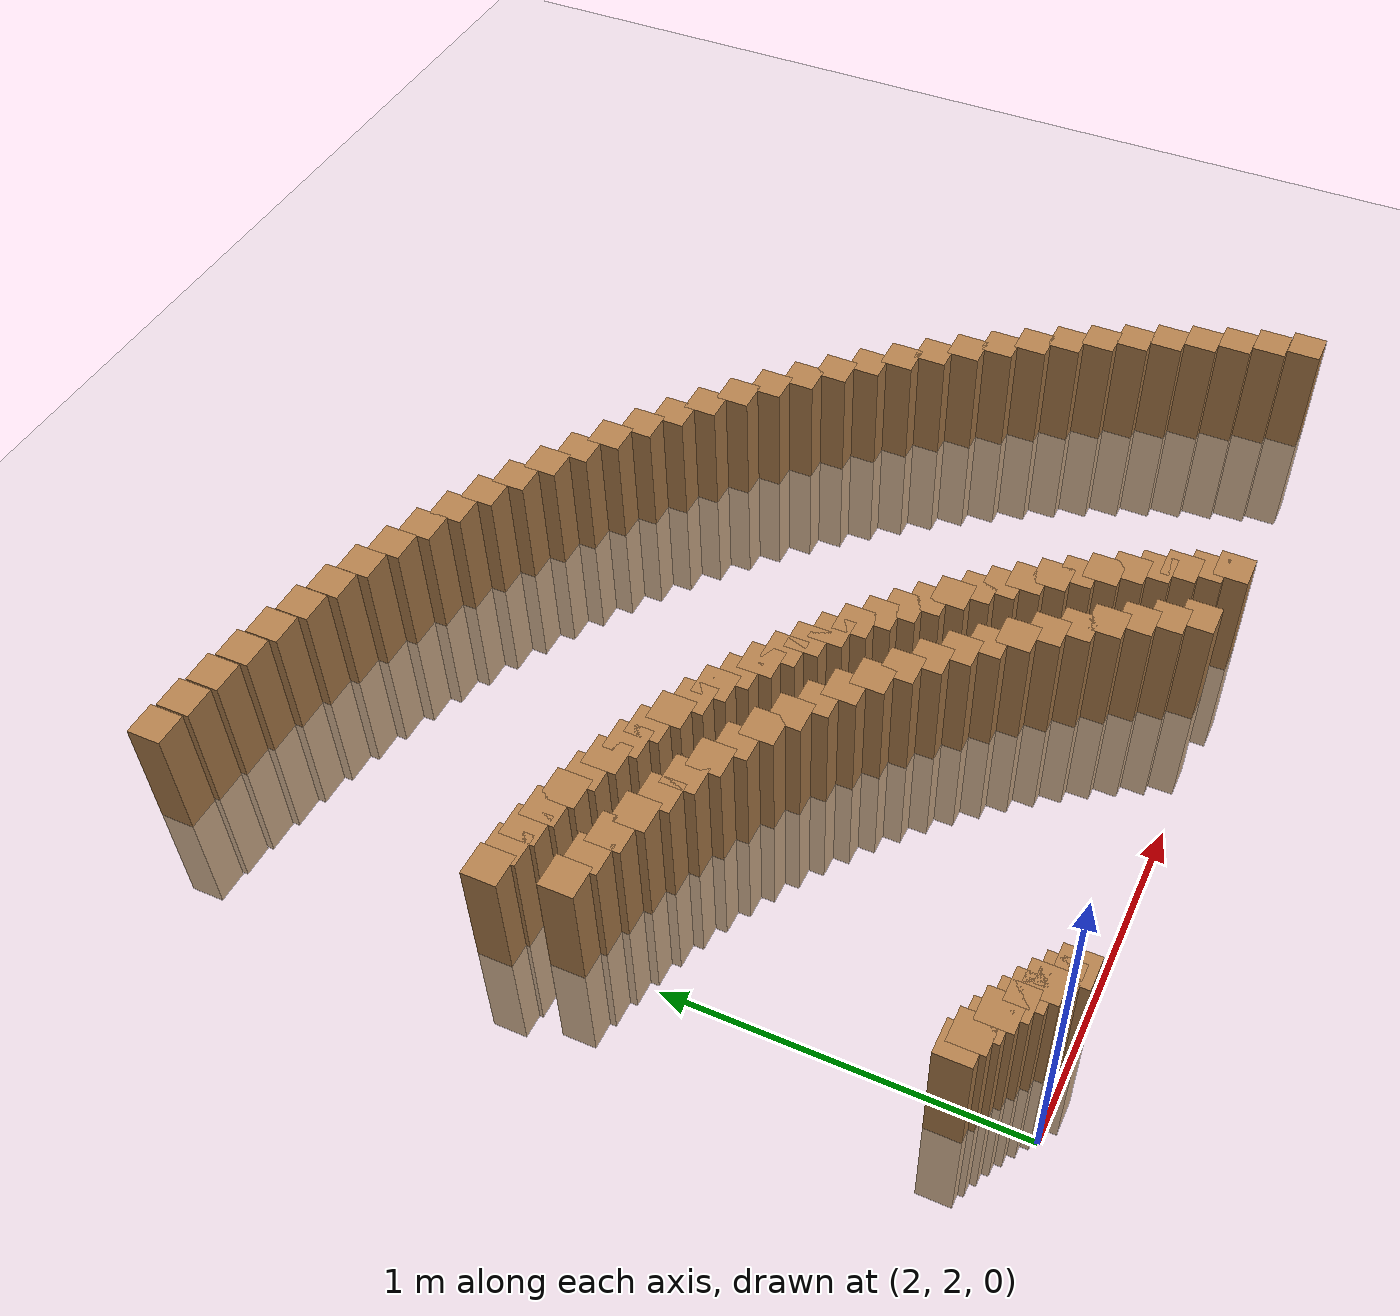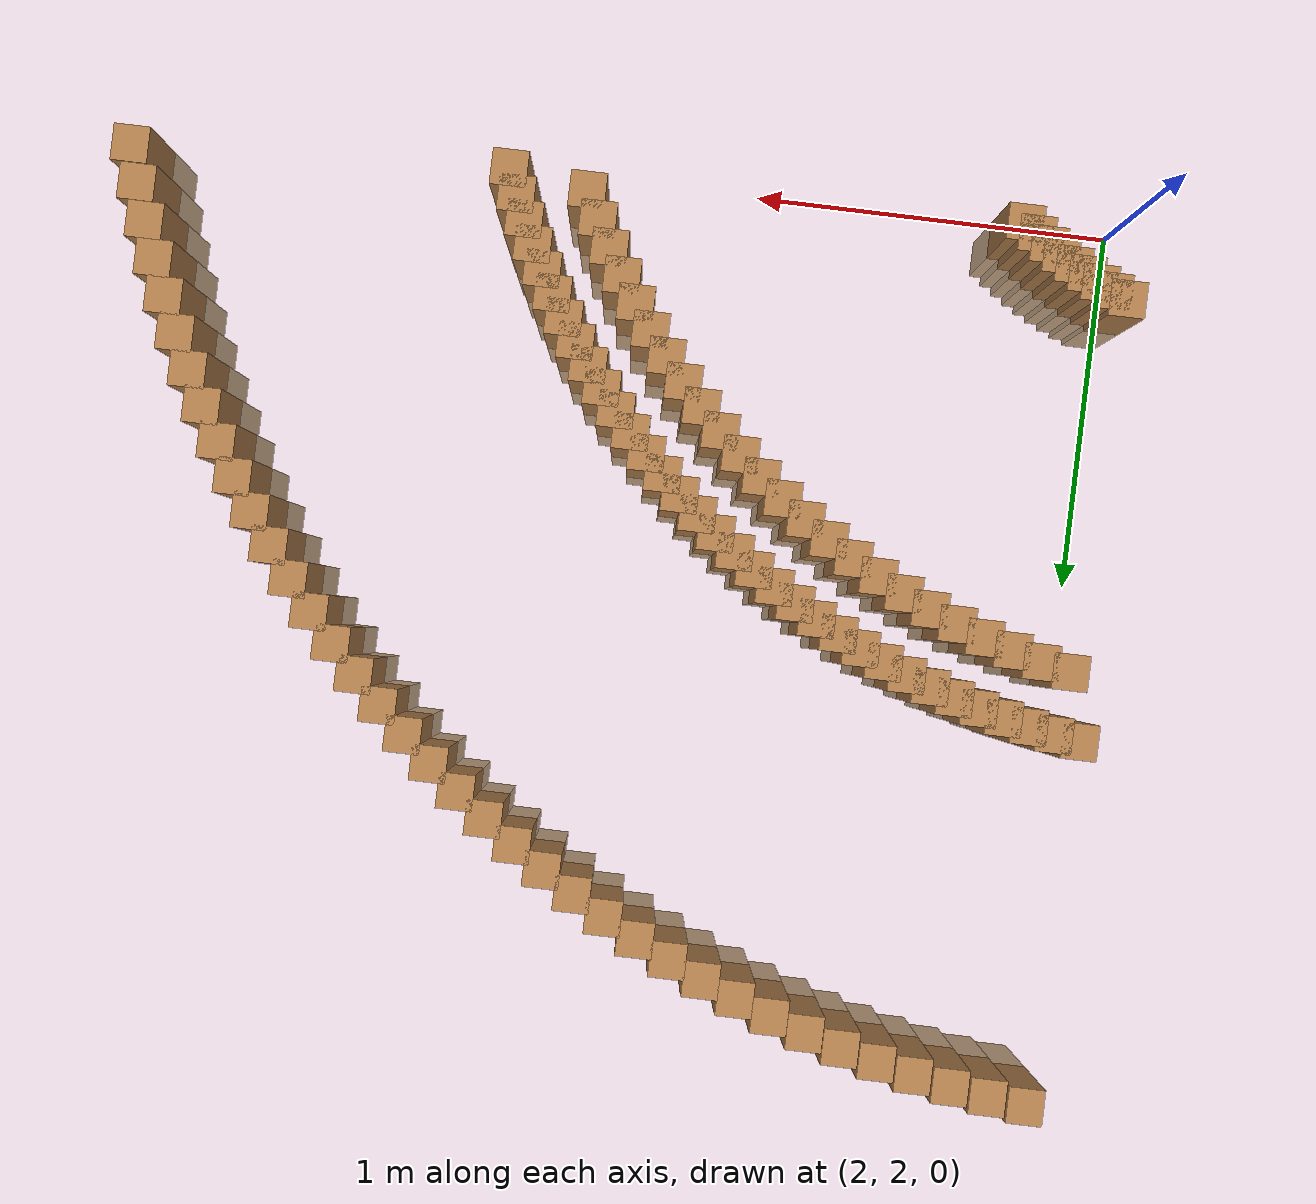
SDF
<sdf version="1.6">
 <world name="default">
  <model name="ground_plane">
   <static>1</static>
   <link name="link">
    <collision name="collision">
     <geometry><plane><normal>0 0 1</normal><size>100 100</size></plane></geometry>
     <surface><friction><ode><mu>100</mu><mu2>50</mu2></ode></friction></surface>
    </collision>
    <visual name="visual">
     <cast_shadows>0</cast_shadows>
     <geometry><plane><normal>0 0 1</normal><size>100 100</size></plane></geometry>
     <material>
      <script><uri>file://media/materials/scripts/gazebo.material</uri><name>Gazebo/Grey</name></script>
     </material>
    </visual>
   </link>
  </model>
  <model name="track">
   <link name="inner_152">
    <pose>2.010864 3.241726 0.000000 0 -0 0</pose>
    <collision name="collision"><geometry><box><size>0.1 0.1 0.7</size></box></geometry></collision>
    <visual name="visual">
     <geometry><box><size>0.1 0.1 0.7</size></box></geometry>
     <material>
      <script><uri>file://media/materials/scripts/gazebo.material</uri><name>Gazebo/Wood</name></script>
     </material>
    </visual>
   </link>
   <link name="inner_153">
    <pose>2.092630 3.223311 0.000000 0 -0 0</pose>
    <collision name="collision"><geometry><box><size>0.1 0.1 0.7</size></box></geometry></collision>
    <visual name="visual">
     <geometry><box><size>0.1 0.1 0.7</size></box></geometry>
     <material>
      <script><uri>file://media/materials/scripts/gazebo.material</uri><name>Gazebo/Wood</name></script>
     </material>
    </visual>
   </link>
   <link name="inner_154">
    <pose>2.173588 3.201619 0.000000 0 -0 0</pose>
    <collision name="collision"><geometry><box><size>0.1 0.1 0.7</size></box></geometry></collision>
    <visual name="visual">
     <geometry><box><size>0.1 0.1 0.7</size></box></geometry>
     <material>
      <script><uri>file://media/materials/scripts/gazebo.material</uri><name>Gazebo/Wood</name></script>
     </material>
    </visual>
   </link>
   <link name="inner_155">
    <pose>2.253606 3.176684 0.000000 0 -0 0</pose>
    <collision name="collision"><geometry><box><size>0.1 0.1 0.7</size></box></geometry></collision>
    <visual name="visual">
     <geometry><box><size>0.1 0.1 0.7</size></box></geometry>
     <material>
      <script><uri>file://media/materials/scripts/gazebo.material</uri><name>Gazebo/Wood</name></script>
     </material>
    </visual>
   </link>
   <link name="inner_156">
    <pose>2.332556 3.148547 0.000000 0 -0 0</pose>
    <collision name="collision"><geometry><box><size>0.1 0.1 0.7</size></box></geometry></collision>
    <visual name="visual">
     <geometry><box><size>0.1 0.1 0.7</size></box></geometry>
     <material>
      <script><uri>file://media/materials/scripts/gazebo.material</uri><name>Gazebo/Wood</name></script>
     </material>
    </visual>
   </link>
   <link name="inner_157">
    <pose>2.410309 3.117255 0.000000 0 -0 0</pose>
    <collision name="collision"><geometry><box><size>0.1 0.1 0.7</size></box></geometry></collision>
    <visual name="visual">
     <geometry><box><size>0.1 0.1 0.7</size></box></geometry>
     <material>
      <script><uri>file://media/materials/scripts/gazebo.material</uri><name>Gazebo/Wood</name></script>
     </material>
    </visual>
   </link>
   <link name="inner_158">
    <pose>2.486739 3.082856 0.000000 0 -0 0</pose>
    <collision name="collision"><geometry><box><size>0.1 0.1 0.7</size></box></geometry></collision>
    <visual name="visual">
     <geometry><box><size>0.1 0.1 0.7</size></box></geometry>
     <material>
      <script><uri>file://media/materials/scripts/gazebo.material</uri><name>Gazebo/Wood</name></script>
     </material>
    </visual>
   </link>
   <link name="inner_159">
    <pose>2.561721 3.045408 0.000000 0 -0 0</pose>
    <collision name="collision"><geometry><box><size>0.1 0.1 0.7</size></box></geometry></collision>
    <visual name="visual">
     <geometry><box><size>0.1 0.1 0.7</size></box></geometry>
     <material>
      <script><uri>file://media/materials/scripts/gazebo.material</uri><name>Gazebo/Wood</name></script>
     </material>
    </visual>
   </link>
   <link name="inner_160">
    <pose>2.635135 3.004972 0.000000 0 -0 0</pose>
    <collision name="collision"><geometry><box><size>0.1 0.1 0.7</size></box></geometry></collision>
    <visual name="visual">
     <geometry><box><size>0.1 0.1 0.7</size></box></geometry>
     <material>
      <script><uri>file://media/materials/scripts/gazebo.material</uri><name>Gazebo/Wood</name></script>
     </material>
    </visual>
   </link>
   <link name="inner_161">
    <pose>2.706861 2.961612 0.000000 0 -0 0</pose>
    <collision name="collision"><geometry><box><size>0.1 0.1 0.7</size></box></geometry></collision>
    <visual name="visual">
     <geometry><box><size>0.1 0.1 0.7</size></box></geometry>
     <material>
      <script><uri>file://media/materials/scripts/gazebo.material</uri><name>Gazebo/Wood</name></script>
     </material>
    </visual>
   </link>
   <link name="inner_162">
    <pose>2.776783 2.915399 0.000000 0 -0 0</pose>
    <collision name="collision"><geometry><box><size>0.1 0.1 0.7</size></box></geometry></collision>
    <visual name="visual">
     <geometry><box><size>0.1 0.1 0.7</size></box></geometry>
     <material>
      <script><uri>file://media/materials/scripts/gazebo.material</uri><name>Gazebo/Wood</name></script>
     </material>
    </visual>
   </link>
   <link name="inner_163">
    <pose>2.844788 2.866408 0.000000 0 -0 0</pose>
    <collision name="collision"><geometry><box><size>0.1 0.1 0.7</size></box></geometry></collision>
    <visual name="visual">
     <geometry><box><size>0.1 0.1 0.7</size></box></geometry>
     <material>
      <script><uri>file://media/materials/scripts/gazebo.material</uri><name>Gazebo/Wood</name></script>
     </material>
    </visual>
   </link>
   <link name="inner_164">
    <pose>2.910765 2.814718 0.000000 0 -0 0</pose>
    <collision name="collision"><geometry><box><size>0.1 0.1 0.7</size></box></geometry></collision>
    <visual name="visual">
     <geometry><box><size>0.1 0.1 0.7</size></box></geometry>
     <material>
      <script><uri>file://media/materials/scripts/gazebo.material</uri><name>Gazebo/Wood</name></script>
     </material>
    </visual>
   </link>
   <link name="inner_165">
    <pose>2.974607 2.760414 0.000000 0 -0 0</pose>
    <collision name="collision"><geometry><box><size>0.1 0.1 0.7</size></box></geometry></collision>
    <visual name="visual">
     <geometry><box><size>0.1 0.1 0.7</size></box></geometry>
     <material>
      <script><uri>file://media/materials/scripts/gazebo.material</uri><name>Gazebo/Wood</name></script>
     </material>
    </visual>
   </link>
   <link name="inner_166">
    <pose>3.036210 2.703583 0.000000 0 -0 0</pose>
    <collision name="collision"><geometry><box><size>0.1 0.1 0.7</size></box></geometry></collision>
    <visual name="visual">
     <geometry><box><size>0.1 0.1 0.7</size></box></geometry>
     <material>
      <script><uri>file://media/materials/scripts/gazebo.material</uri><name>Gazebo/Wood</name></script>
     </material>
    </visual>
   </link>
   <link name="inner_167">
    <pose>3.095475 2.644318 0.000000 0 -0 0</pose>
    <collision name="collision"><geometry><box><size>0.1 0.1 0.7</size></box></geometry></collision>
    <visual name="visual">
     <geometry><box><size>0.1 0.1 0.7</size></box></geometry>
     <material>
      <script><uri>file://media/materials/scripts/gazebo.material</uri><name>Gazebo/Wood</name></script>
     </material>
    </visual>
   </link>
   <link name="inner_168">
    <pose>3.152306 2.582715 0.000000 0 -0 0</pose>
    <collision name="collision"><geometry><box><size>0.1 0.1 0.7</size></box></geometry></collision>
    <visual name="visual">
     <geometry><box><size>0.1 0.1 0.7</size></box></geometry>
     <material>
      <script><uri>file://media/materials/scripts/gazebo.material</uri><name>Gazebo/Wood</name></script>
     </material>
    </visual>
   </link>
   <link name="inner_169">
    <pose>3.206610 2.518873 0.000000 0 -0 0</pose>
    <collision name="collision"><geometry><box><size>0.1 0.1 0.7</size></box></geometry></collision>
    <visual name="visual">
     <geometry><box><size>0.1 0.1 0.7</size></box></geometry>
     <material>
      <script><uri>file://media/materials/scripts/gazebo.material</uri><name>Gazebo/Wood</name></script>
     </material>
    </visual>
   </link>
   <link name="inner_170">
    <pose>3.258300 2.452896 0.000000 0 -0 0</pose>
    <collision name="collision"><geometry><box><size>0.1 0.1 0.7</size></box></geometry></collision>
    <visual name="visual">
     <geometry><box><size>0.1 0.1 0.7</size></box></geometry>
     <material>
      <script><uri>file://media/materials/scripts/gazebo.material</uri><name>Gazebo/Wood</name></script>
     </material>
    </visual>
   </link>
   <link name="inner_171">
    <pose>3.307291 2.384891 0.000000 0 -0 0</pose>
    <collision name="collision"><geometry><box><size>0.1 0.1 0.7</size></box></geometry></collision>
    <visual name="visual">
     <geometry><box><size>0.1 0.1 0.7</size></box></geometry>
     <material>
      <script><uri>file://media/materials/scripts/gazebo.material</uri><name>Gazebo/Wood</name></script>
     </material>
    </visual>
   </link>
   <link name="inner_172">
    <pose>3.353504 2.314969 0.000000 0 -0 0</pose>
    <collision name="collision"><geometry><box><size>0.1 0.1 0.7</size></box></geometry></collision>
    <visual name="visual">
     <geometry><box><size>0.1 0.1 0.7</size></box></geometry>
     <material>
      <script><uri>file://media/materials/scripts/gazebo.material</uri><name>Gazebo/Wood</name></script>
     </material>
    </visual>
   </link>
   <link name="inner_173">
    <pose>3.396864 2.243243 0.000000 0 -0 0</pose>
    <collision name="collision"><geometry><box><size>0.1 0.1 0.7</size></box></geometry></collision>
    <visual name="visual">
     <geometry><box><size>0.1 0.1 0.7</size></box></geometry>
     <material>
      <script><uri>file://media/materials/scripts/gazebo.material</uri><name>Gazebo/Wood</name></script>
     </material>
    </visual>
   </link>
   <link name="inner_174">
    <pose>3.437300 2.169829 0.000000 0 -0 0</pose>
    <collision name="collision"><geometry><box><size>0.1 0.1 0.7</size></box></geometry></collision>
    <visual name="visual">
     <geometry><box><size>0.1 0.1 0.7</size></box></geometry>
     <material>
      <script><uri>file://media/materials/scripts/gazebo.material</uri><name>Gazebo/Wood</name></script>
     </material>
    </visual>
   </link>
   <link name="inner_175">
    <pose>3.474748 2.094847 0.000000 0 -0 0</pose>
    <collision name="collision"><geometry><box><size>0.1 0.1 0.7</size></box></geometry></collision>
    <visual name="visual">
     <geometry><box><size>0.1 0.1 0.7</size></box></geometry>
     <material>
      <script><uri>file://media/materials/scripts/gazebo.material</uri><name>Gazebo/Wood</name></script>
     </material>
    </visual>
   </link>
   <link name="inner_574">
    <pose>3.693363 2.060882 0.000000 0 -0 0</pose>
    <collision name="collision"><geometry><box><size>0.1 0.1 0.7</size></box></geometry></collision>
    <visual name="visual">
     <geometry><box><size>0.1 0.1 0.7</size></box></geometry>
     <material>
      <script><uri>file://media/materials/scripts/gazebo.material</uri><name>Gazebo/Wood</name></script>
     </material>
    </visual>
   </link>
   <link name="inner_575">
    <pose>3.666270 2.127869 0.000000 0 -0 0</pose>
    <collision name="collision"><geometry><box><size>0.1 0.1 0.7</size></box></geometry></collision>
    <visual name="visual">
     <geometry><box><size>0.1 0.1 0.7</size></box></geometry>
     <material>
      <script><uri>file://media/materials/scripts/gazebo.material</uri><name>Gazebo/Wood</name></script>
     </material>
    </visual>
   </link>
   <link name="inner_576">
    <pose>3.636953 2.193913 0.000000 0 -0 0</pose>
    <collision name="collision"><geometry><box><size>0.1 0.1 0.7</size></box></geometry></collision>
    <visual name="visual">
     <geometry><box><size>0.1 0.1 0.7</size></box></geometry>
     <material>
      <script><uri>file://media/materials/scripts/gazebo.material</uri><name>Gazebo/Wood</name></script>
     </material>
    </visual>
   </link>
   <link name="inner_577">
    <pose>3.605446 2.258941 0.000000 0 -0 0</pose>
    <collision name="collision"><geometry><box><size>0.1 0.1 0.7</size></box></geometry></collision>
    <visual name="visual">
     <geometry><box><size>0.1 0.1 0.7</size></box></geometry>
     <material>
      <script><uri>file://media/materials/scripts/gazebo.material</uri><name>Gazebo/Wood</name></script>
     </material>
    </visual>
   </link>
   <link name="inner_578">
    <pose>3.571784 2.322879 0.000000 0 -0 0</pose>
    <collision name="collision"><geometry><box><size>0.1 0.1 0.7</size></box></geometry></collision>
    <visual name="visual">
     <geometry><box><size>0.1 0.1 0.7</size></box></geometry>
     <material>
      <script><uri>file://media/materials/scripts/gazebo.material</uri><name>Gazebo/Wood</name></script>
     </material>
    </visual>
   </link>
   <link name="inner_579">
    <pose>3.536003 2.385658 0.000000 0 -0 0</pose>
    <collision name="collision"><geometry><box><size>0.1 0.1 0.7</size></box></geometry></collision>
    <visual name="visual">
     <geometry><box><size>0.1 0.1 0.7</size></box></geometry>
     <material>
      <script><uri>file://media/materials/scripts/gazebo.material</uri><name>Gazebo/Wood</name></script>
     </material>
    </visual>
   </link>
   <link name="inner_580">
    <pose>3.498145 2.447205 0.000000 0 -0 0</pose>
    <collision name="collision"><geometry><box><size>0.1 0.1 0.7</size></box></geometry></collision>
    <visual name="visual">
     <geometry><box><size>0.1 0.1 0.7</size></box></geometry>
     <material>
      <script><uri>file://media/materials/scripts/gazebo.material</uri><name>Gazebo/Wood</name></script>
     </material>
    </visual>
   </link>
   <link name="inner_581">
    <pose>3.458252 2.507453 0.000000 0 -0 0</pose>
    <collision name="collision"><geometry><box><size>0.1 0.1 0.7</size></box></geometry></collision>
    <visual name="visual">
     <geometry><box><size>0.1 0.1 0.7</size></box></geometry>
     <material>
      <script><uri>file://media/materials/scripts/gazebo.material</uri><name>Gazebo/Wood</name></script>
     </material>
    </visual>
   </link>
   <link name="inner_582">
    <pose>3.416368 2.566335 0.000000 0 -0 0</pose>
    <collision name="collision"><geometry><box><size>0.1 0.1 0.7</size></box></geometry></collision>
    <visual name="visual">
     <geometry><box><size>0.1 0.1 0.7</size></box></geometry>
     <material>
      <script><uri>file://media/materials/scripts/gazebo.material</uri><name>Gazebo/Wood</name></script>
     </material>
    </visual>
   </link>
   <link name="inner_583">
    <pose>3.372539 2.623784 0.000000 0 -0 0</pose>
    <collision name="collision"><geometry><box><size>0.1 0.1 0.7</size></box></geometry></collision>
    <visual name="visual">
     <geometry><box><size>0.1 0.1 0.7</size></box></geometry>
     <material>
      <script><uri>file://media/materials/scripts/gazebo.material</uri><name>Gazebo/Wood</name></script>
     </material>
    </visual>
   </link>
   <link name="inner_584">
    <pose>3.326816 2.679736 0.000000 0 -0 0</pose>
    <collision name="collision"><geometry><box><size>0.1 0.1 0.7</size></box></geometry></collision>
    <visual name="visual">
     <geometry><box><size>0.1 0.1 0.7</size></box></geometry>
     <material>
      <script><uri>file://media/materials/scripts/gazebo.material</uri><name>Gazebo/Wood</name></script>
     </material>
    </visual>
   </link>
   <link name="inner_585">
    <pose>3.279248 2.734129 0.000000 0 -0 0</pose>
    <collision name="collision"><geometry><box><size>0.1 0.1 0.7</size></box></geometry></collision>
    <visual name="visual">
     <geometry><box><size>0.1 0.1 0.7</size></box></geometry>
     <material>
      <script><uri>file://media/materials/scripts/gazebo.material</uri><name>Gazebo/Wood</name></script>
     </material>
    </visual>
   </link>
   <link name="inner_586">
    <pose>3.229889 2.786903 0.000000 0 -0 0</pose>
    <collision name="collision"><geometry><box><size>0.1 0.1 0.7</size></box></geometry></collision>
    <visual name="visual">
     <geometry><box><size>0.1 0.1 0.7</size></box></geometry>
     <material>
      <script><uri>file://media/materials/scripts/gazebo.material</uri><name>Gazebo/Wood</name></script>
     </material>
    </visual>
   </link>
   <link name="inner_587">
    <pose>3.178794 2.837997 0.000000 0 -0 0</pose>
    <collision name="collision"><geometry><box><size>0.1 0.1 0.7</size></box></geometry></collision>
    <visual name="visual">
     <geometry><box><size>0.1 0.1 0.7</size></box></geometry>
     <material>
      <script><uri>file://media/materials/scripts/gazebo.material</uri><name>Gazebo/Wood</name></script>
     </material>
    </visual>
   </link>
   <link name="inner_588">
    <pose>3.126021 2.887356 0.000000 0 -0 0</pose>
    <collision name="collision"><geometry><box><size>0.1 0.1 0.7</size></box></geometry></collision>
    <visual name="visual">
     <geometry><box><size>0.1 0.1 0.7</size></box></geometry>
     <material>
      <script><uri>file://media/materials/scripts/gazebo.material</uri><name>Gazebo/Wood</name></script>
     </material>
    </visual>
   </link>
   <link name="inner_589">
    <pose>3.071628 2.934924 0.000000 0 -0 0</pose>
    <collision name="collision"><geometry><box><size>0.1 0.1 0.7</size></box></geometry></collision>
    <visual name="visual">
     <geometry><box><size>0.1 0.1 0.7</size></box></geometry>
     <material>
      <script><uri>file://media/materials/scripts/gazebo.material</uri><name>Gazebo/Wood</name></script>
     </material>
    </visual>
   </link>
   <link name="inner_590">
    <pose>3.015675 2.980647 0.000000 0 -0 0</pose>
    <collision name="collision"><geometry><box><size>0.1 0.1 0.7</size></box></geometry></collision>
    <visual name="visual">
     <geometry><box><size>0.1 0.1 0.7</size></box></geometry>
     <material>
      <script><uri>file://media/materials/scripts/gazebo.material</uri><name>Gazebo/Wood</name></script>
     </material>
    </visual>
   </link>
   <link name="inner_591">
    <pose>2.958226 3.024476 0.000000 0 -0 0</pose>
    <collision name="collision"><geometry><box><size>0.1 0.1 0.7</size></box></geometry></collision>
    <visual name="visual">
     <geometry><box><size>0.1 0.1 0.7</size></box></geometry>
     <material>
      <script><uri>file://media/materials/scripts/gazebo.material</uri><name>Gazebo/Wood</name></script>
     </material>
    </visual>
   </link>
   <link name="inner_592">
    <pose>2.899345 3.066360 0.000000 0 -0 0</pose>
    <collision name="collision"><geometry><box><size>0.1 0.1 0.7</size></box></geometry></collision>
    <visual name="visual">
     <geometry><box><size>0.1 0.1 0.7</size></box></geometry>
     <material>
      <script><uri>file://media/materials/scripts/gazebo.material</uri><name>Gazebo/Wood</name></script>
     </material>
    </visual>
   </link>
   <link name="inner_593">
    <pose>2.839097 3.106254 0.000000 0 -0 0</pose>
    <collision name="collision"><geometry><box><size>0.1 0.1 0.7</size></box></geometry></collision>
    <visual name="visual">
     <geometry><box><size>0.1 0.1 0.7</size></box></geometry>
     <material>
      <script><uri>file://media/materials/scripts/gazebo.material</uri><name>Gazebo/Wood</name></script>
     </material>
    </visual>
   </link>
   <link name="inner_594">
    <pose>2.777549 3.144112 0.000000 0 -0 0</pose>
    <collision name="collision"><geometry><box><size>0.1 0.1 0.7</size></box></geometry></collision>
    <visual name="visual">
     <geometry><box><size>0.1 0.1 0.7</size></box></geometry>
     <material>
      <script><uri>file://media/materials/scripts/gazebo.material</uri><name>Gazebo/Wood</name></script>
     </material>
    </visual>
   </link>
   <link name="inner_595">
    <pose>2.714771 3.179892 0.000000 0 -0 0</pose>
    <collision name="collision"><geometry><box><size>0.1 0.1 0.7</size></box></geometry></collision>
    <visual name="visual">
     <geometry><box><size>0.1 0.1 0.7</size></box></geometry>
     <material>
      <script><uri>file://media/materials/scripts/gazebo.material</uri><name>Gazebo/Wood</name></script>
     </material>
    </visual>
   </link>
   <link name="inner_596">
    <pose>2.650833 3.213554 0.000000 0 -0 0</pose>
    <collision name="collision"><geometry><box><size>0.1 0.1 0.7</size></box></geometry></collision>
    <visual name="visual">
     <geometry><box><size>0.1 0.1 0.7</size></box></geometry>
     <material>
      <script><uri>file://media/materials/scripts/gazebo.material</uri><name>Gazebo/Wood</name></script>
     </material>
    </visual>
   </link>
   <link name="inner_597">
    <pose>2.585805 3.245061 0.000000 0 -0 0</pose>
    <collision name="collision"><geometry><box><size>0.1 0.1 0.7</size></box></geometry></collision>
    <visual name="visual">
     <geometry><box><size>0.1 0.1 0.7</size></box></geometry>
     <material>
      <script><uri>file://media/materials/scripts/gazebo.material</uri><name>Gazebo/Wood</name></script>
     </material>
    </visual>
   </link>
   <link name="inner_598">
    <pose>2.519761 3.274378 0.000000 0 -0 0</pose>
    <collision name="collision"><geometry><box><size>0.1 0.1 0.7</size></box></geometry></collision>
    <visual name="visual">
     <geometry><box><size>0.1 0.1 0.7</size></box></geometry>
     <material>
      <script><uri>file://media/materials/scripts/gazebo.material</uri><name>Gazebo/Wood</name></script>
     </material>
    </visual>
   </link>
   <link name="inner_599">
    <pose>2.452774 3.301472 0.000000 0 -0 0</pose>
    <collision name="collision"><geometry><box><size>0.1 0.1 0.7</size></box></geometry></collision>
    <visual name="visual">
     <geometry><box><size>0.1 0.1 0.7</size></box></geometry>
     <material>
      <script><uri>file://media/materials/scripts/gazebo.material</uri><name>Gazebo/Wood</name></script>
     </material>
    </visual>
   </link>
   <link name="inner_600">
    <pose>2.384919 3.326312 0.000000 0 -0 0</pose>
    <collision name="collision"><geometry><box><size>0.1 0.1 0.7</size></box></geometry></collision>
    <visual name="visual">
     <geometry><box><size>0.1 0.1 0.7</size></box></geometry>
     <material>
      <script><uri>file://media/materials/scripts/gazebo.material</uri><name>Gazebo/Wood</name></script>
     </material>
    </visual>
   </link>
   <link name="inner_601">
    <pose>2.316272 3.348870 0.000000 0 -0 0</pose>
    <collision name="collision"><geometry><box><size>0.1 0.1 0.7</size></box></geometry></collision>
    <visual name="visual">
     <geometry><box><size>0.1 0.1 0.7</size></box></geometry>
     <material>
      <script><uri>file://media/materials/scripts/gazebo.material</uri><name>Gazebo/Wood</name></script>
     </material>
    </visual>
   </link>
   <link name="inner_602">
    <pose>2.246909 3.369123 0.000000 0 -0 0</pose>
    <collision name="collision"><geometry><box><size>0.1 0.1 0.7</size></box></geometry></collision>
    <visual name="visual">
     <geometry><box><size>0.1 0.1 0.7</size></box></geometry>
     <material>
      <script><uri>file://media/materials/scripts/gazebo.material</uri><name>Gazebo/Wood</name></script>
     </material>
    </visual>
   </link>
   <link name="inner_603">
    <pose>2.176908 3.387046 0.000000 0 -0 0</pose>
    <collision name="collision"><geometry><box><size>0.1 0.1 0.7</size></box></geometry></collision>
    <visual name="visual">
     <geometry><box><size>0.1 0.1 0.7</size></box></geometry>
     <material>
      <script><uri>file://media/materials/scripts/gazebo.material</uri><name>Gazebo/Wood</name></script>
     </material>
    </visual>
   </link>
   <link name="inner_604">
    <pose>2.106348 3.402620 0.000000 0 -0 0</pose>
    <collision name="collision"><geometry><box><size>0.1 0.1 0.7</size></box></geometry></collision>
    <visual name="visual">
     <geometry><box><size>0.1 0.1 0.7</size></box></geometry>
     <material>
      <script><uri>file://media/materials/scripts/gazebo.material</uri><name>Gazebo/Wood</name></script>
     </material>
    </visual>
   </link>
   <link name="inner_605">
    <pose>2.035307 3.415828 0.000000 0 -0 0</pose>
    <collision name="collision"><geometry><box><size>0.1 0.1 0.7</size></box></geometry></collision>
    <visual name="visual">
     <geometry><box><size>0.1 0.1 0.7</size></box></geometry>
     <material>
      <script><uri>file://media/materials/scripts/gazebo.material</uri><name>Gazebo/Wood</name></script>
     </material>
    </visual>
   </link>
   <link name="inner_606">
    <pose>1.963864 3.426654 0.000000 0 -0 0</pose>
    <collision name="collision"><geometry><box><size>0.1 0.1 0.7</size></box></geometry></collision>
    <visual name="visual">
     <geometry><box><size>0.1 0.1 0.7</size></box></geometry>
     <material>
      <script><uri>file://media/materials/scripts/gazebo.material</uri><name>Gazebo/Wood</name></script>
     </material>
    </visual>
   </link>
   <link name="outer_156">
    <pose>1.977951 2.213531 0.000000 0 -0 0</pose>
    <collision name="collision"><geometry><box><size>0.1 0.1 0.7</size></box></geometry></collision>
    <visual name="visual">
     <geometry><box><size>0.1 0.1 0.7</size></box></geometry>
     <material>
      <script><uri>file://media/materials/scripts/gazebo.material</uri><name>Gazebo/Wood</name></script>
     </material>
    </visual>
   </link>
   <link name="outer_157">
    <pose>2.018342 2.197275 0.000000 0 -0 0</pose>
    <collision name="collision"><geometry><box><size>0.1 0.1 0.7</size></box></geometry></collision>
    <visual name="visual">
     <geometry><box><size>0.1 0.1 0.7</size></box></geometry>
     <material>
      <script><uri>file://media/materials/scripts/gazebo.material</uri><name>Gazebo/Wood</name></script>
     </material>
    </visual>
   </link>
   <link name="outer_158">
    <pose>2.058046 2.179406 0.000000 0 -0 0</pose>
    <collision name="collision"><geometry><box><size>0.1 0.1 0.7</size></box></geometry></collision>
    <visual name="visual">
     <geometry><box><size>0.1 0.1 0.7</size></box></geometry>
     <material>
      <script><uri>file://media/materials/scripts/gazebo.material</uri><name>Gazebo/Wood</name></script>
     </material>
    </visual>
   </link>
   <link name="outer_159">
    <pose>2.096998 2.159952 0.000000 0 -0 0</pose>
    <collision name="collision"><geometry><box><size>0.1 0.1 0.7</size></box></geometry></collision>
    <visual name="visual">
     <geometry><box><size>0.1 0.1 0.7</size></box></geometry>
     <material>
      <script><uri>file://media/materials/scripts/gazebo.material</uri><name>Gazebo/Wood</name></script>
     </material>
    </visual>
   </link>
   <link name="outer_160">
    <pose>2.135135 2.138946 0.000000 0 -0 0</pose>
    <collision name="collision"><geometry><box><size>0.1 0.1 0.7</size></box></geometry></collision>
    <visual name="visual">
     <geometry><box><size>0.1 0.1 0.7</size></box></geometry>
     <material>
      <script><uri>file://media/materials/scripts/gazebo.material</uri><name>Gazebo/Wood</name></script>
     </material>
    </visual>
   </link>
   <link name="outer_161">
    <pose>2.172395 2.116422 0.000000 0 -0 0</pose>
    <collision name="collision"><geometry><box><size>0.1 0.1 0.7</size></box></geometry></collision>
    <visual name="visual">
     <geometry><box><size>0.1 0.1 0.7</size></box></geometry>
     <material>
      <script><uri>file://media/materials/scripts/gazebo.material</uri><name>Gazebo/Wood</name></script>
     </material>
    </visual>
   </link>
   <link name="outer_162">
    <pose>2.208719 2.092415 0.000000 0 -0 0</pose>
    <collision name="collision"><geometry><box><size>0.1 0.1 0.7</size></box></geometry></collision>
    <visual name="visual">
     <geometry><box><size>0.1 0.1 0.7</size></box></geometry>
     <material>
      <script><uri>file://media/materials/scripts/gazebo.material</uri><name>Gazebo/Wood</name></script>
     </material>
    </visual>
   </link>
   <link name="outer_163">
    <pose>2.244046 2.066965 0.000000 0 -0 0</pose>
    <collision name="collision"><geometry><box><size>0.1 0.1 0.7</size></box></geometry></collision>
    <visual name="visual">
     <geometry><box><size>0.1 0.1 0.7</size></box></geometry>
     <material>
      <script><uri>file://media/materials/scripts/gazebo.material</uri><name>Gazebo/Wood</name></script>
     </material>
    </visual>
   </link>
   <link name="outer_164">
    <pose>2.278319 2.040113 0.000000 0 -0 0</pose>
    <collision name="collision"><geometry><box><size>0.1 0.1 0.7</size></box></geometry></collision>
    <visual name="visual">
     <geometry><box><size>0.1 0.1 0.7</size></box></geometry>
     <material>
      <script><uri>file://media/materials/scripts/gazebo.material</uri><name>Gazebo/Wood</name></script>
     </material>
    </visual>
   </link>
   <link name="outer_571">
    <pose>4.725484 2.119212 0.000000 0 -0 0</pose>
    <collision name="collision"><geometry><box><size>0.1 0.1 0.7</size></box></geometry></collision>
    <visual name="visual">
     <geometry><box><size>0.1 0.1 0.7</size></box></geometry>
     <material>
      <script><uri>file://media/materials/scripts/gazebo.material</uri><name>Gazebo/Wood</name></script>
     </material>
    </visual>
   </link>
   <link name="outer_572">
    <pose>4.695865 2.220655 0.000000 0 -0 0</pose>
    <collision name="collision"><geometry><box><size>0.1 0.1 0.7</size></box></geometry></collision>
    <visual name="visual">
     <geometry><box><size>0.1 0.1 0.7</size></box></geometry>
     <material>
      <script><uri>file://media/materials/scripts/gazebo.material</uri><name>Gazebo/Wood</name></script>
     </material>
    </visual>
   </link>
   <link name="outer_573">
    <pose>4.662873 2.321052 0.000000 0 -0 0</pose>
    <collision name="collision"><geometry><box><size>0.1 0.1 0.7</size></box></geometry></collision>
    <visual name="visual">
     <geometry><box><size>0.1 0.1 0.7</size></box></geometry>
     <material>
      <script><uri>file://media/materials/scripts/gazebo.material</uri><name>Gazebo/Wood</name></script>
     </material>
    </visual>
   </link>
   <link name="outer_574">
    <pose>4.626544 2.420289 0.000000 0 -0 0</pose>
    <collision name="collision"><geometry><box><size>0.1 0.1 0.7</size></box></geometry></collision>
    <visual name="visual">
     <geometry><box><size>0.1 0.1 0.7</size></box></geometry>
     <material>
      <script><uri>file://media/materials/scripts/gazebo.material</uri><name>Gazebo/Wood</name></script>
     </material>
    </visual>
   </link>
   <link name="outer_575">
    <pose>4.586920 2.518258 0.000000 0 -0 0</pose>
    <collision name="collision"><geometry><box><size>0.1 0.1 0.7</size></box></geometry></collision>
    <visual name="visual">
     <geometry><box><size>0.1 0.1 0.7</size></box></geometry>
     <material>
      <script><uri>file://media/materials/scripts/gazebo.material</uri><name>Gazebo/Wood</name></script>
     </material>
    </visual>
   </link>
   <link name="outer_576">
    <pose>4.544044 2.614848 0.000000 0 -0 0</pose>
    <collision name="collision"><geometry><box><size>0.1 0.1 0.7</size></box></geometry></collision>
    <visual name="visual">
     <geometry><box><size>0.1 0.1 0.7</size></box></geometry>
     <material>
      <script><uri>file://media/materials/scripts/gazebo.material</uri><name>Gazebo/Wood</name></script>
     </material>
    </visual>
   </link>
   <link name="outer_577">
    <pose>4.497965 2.709951 0.000000 0 -0 0</pose>
    <collision name="collision"><geometry><box><size>0.1 0.1 0.7</size></box></geometry></collision>
    <visual name="visual">
     <geometry><box><size>0.1 0.1 0.7</size></box></geometry>
     <material>
      <script><uri>file://media/materials/scripts/gazebo.material</uri><name>Gazebo/Wood</name></script>
     </material>
    </visual>
   </link>
   <link name="outer_578">
    <pose>4.448734 2.803461 0.000000 0 -0 0</pose>
    <collision name="collision"><geometry><box><size>0.1 0.1 0.7</size></box></geometry></collision>
    <visual name="visual">
     <geometry><box><size>0.1 0.1 0.7</size></box></geometry>
     <material>
      <script><uri>file://media/materials/scripts/gazebo.material</uri><name>Gazebo/Wood</name></script>
     </material>
    </visual>
   </link>
   <link name="outer_579">
    <pose>4.396405 2.895274 0.000000 0 -0 0</pose>
    <collision name="collision"><geometry><box><size>0.1 0.1 0.7</size></box></geometry></collision>
    <visual name="visual">
     <geometry><box><size>0.1 0.1 0.7</size></box></geometry>
     <material>
      <script><uri>file://media/materials/scripts/gazebo.material</uri><name>Gazebo/Wood</name></script>
     </material>
    </visual>
   </link>
   <link name="outer_580">
    <pose>4.341038 2.985287 0.000000 0 -0 0</pose>
    <collision name="collision"><geometry><box><size>0.1 0.1 0.7</size></box></geometry></collision>
    <visual name="visual">
     <geometry><box><size>0.1 0.1 0.7</size></box></geometry>
     <material>
      <script><uri>file://media/materials/scripts/gazebo.material</uri><name>Gazebo/Wood</name></script>
     </material>
    </visual>
   </link>
   <link name="outer_581">
    <pose>4.282694 3.073400 0.000000 0 -0 0</pose>
    <collision name="collision"><geometry><box><size>0.1 0.1 0.7</size></box></geometry></collision>
    <visual name="visual">
     <geometry><box><size>0.1 0.1 0.7</size></box></geometry>
     <material>
      <script><uri>file://media/materials/scripts/gazebo.material</uri><name>Gazebo/Wood</name></script>
     </material>
    </visual>
   </link>
   <link name="outer_582">
    <pose>4.221438 3.159514 0.000000 0 -0 0</pose>
    <collision name="collision"><geometry><box><size>0.1 0.1 0.7</size></box></geometry></collision>
    <visual name="visual">
     <geometry><box><size>0.1 0.1 0.7</size></box></geometry>
     <material>
      <script><uri>file://media/materials/scripts/gazebo.material</uri><name>Gazebo/Wood</name></script>
     </material>
    </visual>
   </link>
   <link name="outer_583">
    <pose>4.157339 3.243533 0.000000 0 -0 0</pose>
    <collision name="collision"><geometry><box><size>0.1 0.1 0.7</size></box></geometry></collision>
    <visual name="visual">
     <geometry><box><size>0.1 0.1 0.7</size></box></geometry>
     <material>
      <script><uri>file://media/materials/scripts/gazebo.material</uri><name>Gazebo/Wood</name></script>
     </material>
    </visual>
   </link>
   <link name="outer_584">
    <pose>4.090468 3.325364 0.000000 0 -0 0</pose>
    <collision name="collision"><geometry><box><size>0.1 0.1 0.7</size></box></geometry></collision>
    <visual name="visual">
     <geometry><box><size>0.1 0.1 0.7</size></box></geometry>
     <material>
      <script><uri>file://media/materials/scripts/gazebo.material</uri><name>Gazebo/Wood</name></script>
     </material>
    </visual>
   </link>
   <link name="outer_585">
    <pose>4.020900 3.404914 0.000000 0 -0 0</pose>
    <collision name="collision"><geometry><box><size>0.1 0.1 0.7</size></box></geometry></collision>
    <visual name="visual">
     <geometry><box><size>0.1 0.1 0.7</size></box></geometry>
     <material>
      <script><uri>file://media/materials/scripts/gazebo.material</uri><name>Gazebo/Wood</name></script>
     </material>
    </visual>
   </link>
   <link name="outer_586">
    <pose>3.948713 3.482095 0.000000 0 -0 0</pose>
    <collision name="collision"><geometry><box><size>0.1 0.1 0.7</size></box></geometry></collision>
    <visual name="visual">
     <geometry><box><size>0.1 0.1 0.7</size></box></geometry>
     <material>
      <script><uri>file://media/materials/scripts/gazebo.material</uri><name>Gazebo/Wood</name></script>
     </material>
    </visual>
   </link>
   <link name="outer_587">
    <pose>3.873987 3.556821 0.000000 0 -0 0</pose>
    <collision name="collision"><geometry><box><size>0.1 0.1 0.7</size></box></geometry></collision>
    <visual name="visual">
     <geometry><box><size>0.1 0.1 0.7</size></box></geometry>
     <material>
      <script><uri>file://media/materials/scripts/gazebo.material</uri><name>Gazebo/Wood</name></script>
     </material>
    </visual>
   </link>
   <link name="outer_588">
    <pose>3.796806 3.629008 0.000000 0 -0 0</pose>
    <collision name="collision"><geometry><box><size>0.1 0.1 0.7</size></box></geometry></collision>
    <visual name="visual">
     <geometry><box><size>0.1 0.1 0.7</size></box></geometry>
     <material>
      <script><uri>file://media/materials/scripts/gazebo.material</uri><name>Gazebo/Wood</name></script>
     </material>
    </visual>
   </link>
   <link name="outer_589">
    <pose>3.717256 3.698576 0.000000 0 -0 0</pose>
    <collision name="collision"><geometry><box><size>0.1 0.1 0.7</size></box></geometry></collision>
    <visual name="visual">
     <geometry><box><size>0.1 0.1 0.7</size></box></geometry>
     <material>
      <script><uri>file://media/materials/scripts/gazebo.material</uri><name>Gazebo/Wood</name></script>
     </material>
    </visual>
   </link>
   <link name="outer_590">
    <pose>3.635425 3.765447 0.000000 0 -0 0</pose>
    <collision name="collision"><geometry><box><size>0.1 0.1 0.7</size></box></geometry></collision>
    <visual name="visual">
     <geometry><box><size>0.1 0.1 0.7</size></box></geometry>
     <material>
      <script><uri>file://media/materials/scripts/gazebo.material</uri><name>Gazebo/Wood</name></script>
     </material>
    </visual>
   </link>
   <link name="outer_591">
    <pose>3.551406 3.829546 0.000000 0 -0 0</pose>
    <collision name="collision"><geometry><box><size>0.1 0.1 0.7</size></box></geometry></collision>
    <visual name="visual">
     <geometry><box><size>0.1 0.1 0.7</size></box></geometry>
     <material>
      <script><uri>file://media/materials/scripts/gazebo.material</uri><name>Gazebo/Wood</name></script>
     </material>
    </visual>
   </link>
   <link name="outer_592">
    <pose>3.465292 3.890802 0.000000 0 -0 0</pose>
    <collision name="collision"><geometry><box><size>0.1 0.1 0.7</size></box></geometry></collision>
    <visual name="visual">
     <geometry><box><size>0.1 0.1 0.7</size></box></geometry>
     <material>
      <script><uri>file://media/materials/scripts/gazebo.material</uri><name>Gazebo/Wood</name></script>
     </material>
    </visual>
   </link>
   <link name="outer_593">
    <pose>3.377179 3.949146 0.000000 0 -0 0</pose>
    <collision name="collision"><geometry><box><size>0.1 0.1 0.7</size></box></geometry></collision>
    <visual name="visual">
     <geometry><box><size>0.1 0.1 0.7</size></box></geometry>
     <material>
      <script><uri>file://media/materials/scripts/gazebo.material</uri><name>Gazebo/Wood</name></script>
     </material>
    </visual>
   </link>
   <link name="outer_594">
    <pose>3.287166 4.004513 0.000000 0 -0 0</pose>
    <collision name="collision"><geometry><box><size>0.1 0.1 0.7</size></box></geometry></collision>
    <visual name="visual">
     <geometry><box><size>0.1 0.1 0.7</size></box></geometry>
     <material>
      <script><uri>file://media/materials/scripts/gazebo.material</uri><name>Gazebo/Wood</name></script>
     </material>
    </visual>
   </link>
   <link name="outer_595">
    <pose>3.195353 4.056842 0.000000 0 -0 0</pose>
    <collision name="collision"><geometry><box><size>0.1 0.1 0.7</size></box></geometry></collision>
    <visual name="visual">
     <geometry><box><size>0.1 0.1 0.7</size></box></geometry>
     <material>
      <script><uri>file://media/materials/scripts/gazebo.material</uri><name>Gazebo/Wood</name></script>
     </material>
    </visual>
   </link>
   <link name="outer_596">
    <pose>3.101843 4.106073 0.000000 0 -0 0</pose>
    <collision name="collision"><geometry><box><size>0.1 0.1 0.7</size></box></geometry></collision>
    <visual name="visual">
     <geometry><box><size>0.1 0.1 0.7</size></box></geometry>
     <material>
      <script><uri>file://media/materials/scripts/gazebo.material</uri><name>Gazebo/Wood</name></script>
     </material>
    </visual>
   </link>
   <link name="outer_597">
    <pose>3.006740 4.152152 0.000000 0 -0 0</pose>
    <collision name="collision"><geometry><box><size>0.1 0.1 0.7</size></box></geometry></collision>
    <visual name="visual">
     <geometry><box><size>0.1 0.1 0.7</size></box></geometry>
     <material>
      <script><uri>file://media/materials/scripts/gazebo.material</uri><name>Gazebo/Wood</name></script>
     </material>
    </visual>
   </link>
   <link name="outer_598">
    <pose>2.910150 4.195028 0.000000 0 -0 0</pose>
    <collision name="collision"><geometry><box><size>0.1 0.1 0.7</size></box></geometry></collision>
    <visual name="visual">
     <geometry><box><size>0.1 0.1 0.7</size></box></geometry>
     <material>
      <script><uri>file://media/materials/scripts/gazebo.material</uri><name>Gazebo/Wood</name></script>
     </material>
    </visual>
   </link>
   <link name="outer_599">
    <pose>2.812181 4.234652 0.000000 0 -0 0</pose>
    <collision name="collision"><geometry><box><size>0.1 0.1 0.7</size></box></geometry></collision>
    <visual name="visual">
     <geometry><box><size>0.1 0.1 0.7</size></box></geometry>
     <material>
      <script><uri>file://media/materials/scripts/gazebo.material</uri><name>Gazebo/Wood</name></script>
     </material>
    </visual>
   </link>
   <link name="outer_600">
    <pose>2.712943 4.270981 0.000000 0 -0 0</pose>
    <collision name="collision"><geometry><box><size>0.1 0.1 0.7</size></box></geometry></collision>
    <visual name="visual">
     <geometry><box><size>0.1 0.1 0.7</size></box></geometry>
     <material>
      <script><uri>file://media/materials/scripts/gazebo.material</uri><name>Gazebo/Wood</name></script>
     </material>
    </visual>
   </link>
   <link name="outer_601">
    <pose>2.612547 4.303973 0.000000 0 -0 0</pose>
    <collision name="collision"><geometry><box><size>0.1 0.1 0.7</size></box></geometry></collision>
    <visual name="visual">
     <geometry><box><size>0.1 0.1 0.7</size></box></geometry>
     <material>
      <script><uri>file://media/materials/scripts/gazebo.material</uri><name>Gazebo/Wood</name></script>
     </material>
    </visual>
   </link>
   <link name="outer_602">
    <pose>2.511104 4.333592 0.000000 0 -0 0</pose>
    <collision name="collision"><geometry><box><size>0.1 0.1 0.7</size></box></geometry></collision>
    <visual name="visual">
     <geometry><box><size>0.1 0.1 0.7</size></box></geometry>
     <material>
      <script><uri>file://media/materials/scripts/gazebo.material</uri><name>Gazebo/Wood</name></script>
     </material>
    </visual>
   </link>
   <link name="outer_603">
    <pose>2.408729 4.359804 0.000000 0 -0 0</pose>
    <collision name="collision"><geometry><box><size>0.1 0.1 0.7</size></box></geometry></collision>
    <visual name="visual">
     <geometry><box><size>0.1 0.1 0.7</size></box></geometry>
     <material>
      <script><uri>file://media/materials/scripts/gazebo.material</uri><name>Gazebo/Wood</name></script>
     </material>
    </visual>
   </link>
   <link name="outer_604">
    <pose>2.305534 4.382582 0.000000 0 -0 0</pose>
    <collision name="collision"><geometry><box><size>0.1 0.1 0.7</size></box></geometry></collision>
    <visual name="visual">
     <geometry><box><size>0.1 0.1 0.7</size></box></geometry>
     <material>
      <script><uri>file://media/materials/scripts/gazebo.material</uri><name>Gazebo/Wood</name></script>
     </material>
    </visual>
   </link>
   <link name="outer_605">
    <pose>2.201636 4.401898 0.000000 0 -0 0</pose>
    <collision name="collision"><geometry><box><size>0.1 0.1 0.7</size></box></geometry></collision>
    <visual name="visual">
     <geometry><box><size>0.1 0.1 0.7</size></box></geometry>
     <material>
      <script><uri>file://media/materials/scripts/gazebo.material</uri><name>Gazebo/Wood</name></script>
     </material>
    </visual>
   </link>
   <link name="outer_606">
    <pose>2.097151 4.417732 0.000000 0 -0 0</pose>
    <collision name="collision"><geometry><box><size>0.1 0.1 0.7</size></box></geometry></collision>
    <visual name="visual">
     <geometry><box><size>0.1 0.1 0.7</size></box></geometry>
     <material>
      <script><uri>file://media/materials/scripts/gazebo.material</uri><name>Gazebo/Wood</name></script>
     </material>
    </visual>
   </link>
   <link name="outer_607">
    <pose>1.992194 4.430065 0.000000 0 -0 0</pose>
    <collision name="collision"><geometry><box><size>0.1 0.1 0.7</size></box></geometry></collision>
    <visual name="visual">
     <geometry><box><size>0.1 0.1 0.7</size></box></geometry>
     <material>
      <script><uri>file://media/materials/scripts/gazebo.material</uri><name>Gazebo/Wood</name></script>
     </material>
    </visual>
   </link>
   <static>1</static>
  </model>
 </world>
</sdf>
